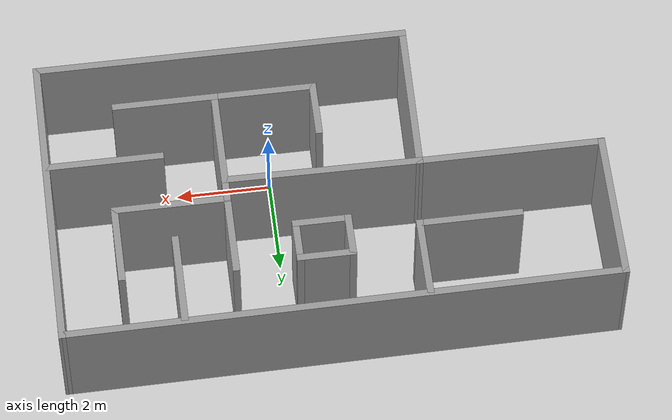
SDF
<sdf version="1.7">
 <world name="default">
  <light name="sun" type="directional">
   <pose>0 0 10 0 -0 0</pose>
   <diffuse>0.8 0.8 0.8 1</diffuse>
   <specular>0.2 0.2 0.2 1</specular>
   <attenuation>
    <range>1000</range>
    <constant>0.9</constant>
    <linear>0.01</linear>
    <quadratic>0.001</quadratic>
   </attenuation>
   <direction>-0.5 0.1 -0.9</direction>
   <spot><inner_angle>0</inner_angle><outer_angle>0</outer_angle><falloff>0</falloff></spot>
  </light>
  <model name="ground_plane">
   <static>1</static>
   <link name="link">
    <collision name="collision">
     <geometry><plane><normal>0 0 1</normal><size>100 100</size></plane></geometry>
     <surface>
      <contact><collide_bitmask>65535</collide_bitmask></contact>
      <friction><ode><mu>100</mu><mu2>50</mu2></ode></friction>
     </surface>
    </collision>
    <visual name="visual">
     <cast_shadows>0</cast_shadows>
     <geometry><plane><normal>0 0 1</normal><size>100 100</size></plane></geometry>
     <material>
      <script><uri>file://media/materials/scripts/gazebo.material</uri><name>Gazebo/Grey</name></script>
     </material>
    </visual>
   </link>
  </model>
  <gravity>0 0 -9.8</gravity>
  <magnetic_field>6e-06 2.3e-05 -4.2e-05</magnetic_field>
  <atmosphere type="adiabatic"/>
  <physics type="ode">
   <max_step_size>0.001</max_step_size>
   <real_time_factor>1</real_time_factor>
   <real_time_update_rate>1000</real_time_update_rate>
  </physics>
  <scene><ambient>0.4 0.4 0.4 1</ambient><background>0.7 0.7 0.7 1</background><shadows>1</shadows></scene>
  <spherical_coordinates>
   <surface_model>EARTH_WGS84</surface_model>
   <latitude_deg>0</latitude_deg>
   <longitude_deg>0</longitude_deg>
   <elevation>0</elevation>
   <heading_deg>0</heading_deg>
  </spherical_coordinates>
  <model name="map_1">
   <pose>-1.0912 1.19335 0 0 -0 0</pose>
   <link name="Wall_13">
    <collision name="Wall_13_Collision">
     <geometry><box><size>6.55397 0.15 2.5</size></box></geometry>
     <pose>0 0 1.25 0 -0 0</pose>
    </collision>
    <visual name="Wall_13_Visual">
     <pose>0 0 1.25 0 -0 0</pose>
     <geometry><box><size>6.55397 0.15 2.5</size></box></geometry>
     <material>
      <script><uri>file://media/materials/scripts/gazebo.material</uri><name>Gazebo/Grey</name></script>
      <ambient>1 1 1 1</ambient>
     </material>
     <meta><layer>0</layer></meta>
    </visual>
    <pose>5.82453 0.000467 0 0 -0 -1.57388</pose>
   </link>
   <link name="Wall_21">
    <collision name="Wall_21_Collision">
     <geometry><box><size>4.25 0.15 2.5</size></box></geometry>
     <pose>0 0 1.25 0 -0 0</pose>
    </collision>
    <visual name="Wall_21_Visual">
     <pose>0 0 1.25 0 -0 0</pose>
     <geometry><box><size>4.25 0.15 2.5</size></box></geometry>
     <material>
      <script><uri>file://media/materials/scripts/gazebo.material</uri><name>Gazebo/Grey</name></script>
      <ambient>1 1 1 1</ambient>
     </material>
     <meta><layer>0</layer></meta>
    </visual>
    <pose>0.08062 -0.025909 0 0 -0 -0.009646</pose>
   </link>
   <link name="Wall_29">
    <collision name="Wall_29_Collision">
     <geometry><box><size>2.21045 0.15 2.5</size></box></geometry>
     <pose>0 0 1.25 0 -0 0</pose>
    </collision>
    <visual name="Wall_29_Visual">
     <pose>0 0 1.25 0 -0 0</pose>
     <geometry><box><size>2.21045 0.15 2.5</size></box></geometry>
     <material>
      <script><uri>file://media/materials/scripts/gazebo.material</uri><name>Gazebo/Grey</name></script>
      <ambient>1 1 1 1</ambient>
     </material>
     <meta><layer>0</layer></meta>
    </visual>
    <pose>2.13062 -1.07591 0 0 -0 -1.5708</pose>
   </link>
   <link name="Wall_30">
    <collision name="Wall_30_Collision">
     <geometry><box><size>2.25 0.15 2.5</size></box></geometry>
     <pose>0 0 1.25 0 -0 0</pose>
    </collision>
    <visual name="Wall_30_Visual">
     <pose>0 0 1.25 0 -0 0</pose>
     <geometry><box><size>2.25 0.15 2.5</size></box></geometry>
     <material>
      <script><uri>file://media/materials/scripts/gazebo.material</uri><name>Gazebo/Grey</name></script>
      <ambient>1 1 1 1</ambient>
     </material>
     <meta><layer>0</layer></meta>
    </visual>
    <pose>1.08062 -2.10613 0 0 -0 3.14159</pose>
   </link>
   <link name="Wall_31">
    <collision name="Wall_31_Collision">
     <geometry><box><size>1.25 0.15 2.5</size></box></geometry>
     <pose>0 0 1.25 0 -0 0</pose>
    </collision>
    <visual name="Wall_31_Visual">
     <pose>0 0 1.25 0 -0 0</pose>
     <geometry><box><size>1.25 0.15 2.5</size></box></geometry>
     <material>
      <script><uri>file://media/materials/scripts/gazebo.material</uri><name>Gazebo/Grey</name></script>
      <ambient>1 1 1 1</ambient>
     </material>
     <meta><layer>0</layer></meta>
    </visual>
    <pose>0.03062 -1.55613 0 0 -0 1.5708</pose>
   </link>
   <link name="Wall_33">
    <collision name="Wall_33_Collision">
     <geometry><box><size>2.25 0.15 2.5</size></box></geometry>
     <pose>0 0 1.25 0 -0 0</pose>
    </collision>
    <visual name="Wall_33_Visual">
     <pose>0 0 1.25 0 -0 0</pose>
     <geometry><box><size>2.25 0.15 2.5</size></box></geometry>
     <material>
      <script><uri>file://media/materials/scripts/gazebo.material</uri><name>Gazebo/Grey</name></script>
      <ambient>1 1 1 1</ambient>
     </material>
     <meta><layer>0</layer></meta>
    </visual>
    <pose>3.18062 -2.10613 0 0 -0 0</pose>
   </link>
   <link name="Wall_35">
    <collision name="Wall_35_Collision">
     <geometry><box><size>2.5 0.15 2.5</size></box></geometry>
     <pose>0 0 1.25 0 -0 0</pose>
    </collision>
    <visual name="Wall_35_Visual">
     <pose>0 0 1.25 0 -0 0</pose>
     <geometry><box><size>2.5 0.15 2.5</size></box></geometry>
     <material>
      <script><uri>file://media/materials/scripts/gazebo.material</uri><name>Gazebo/Grey</name></script>
      <ambient>1 1 1 1</ambient>
     </material>
     <meta><layer>0</layer></meta>
    </visual>
    <pose>4.58756 -0.797125 0 0 -0 3.14159</pose>
   </link>
   <link name="Wall_37">
    <collision name="Wall_37_Collision">
     <geometry><box><size>2.25 0.15 2.5</size></box></geometry>
     <pose>0 0 1.25 0 -0 0</pose>
    </collision>
    <visual name="Wall_37_Visual">
     <pose>0 0 1.25 0 -0 0</pose>
     <geometry><box><size>2.25 0.15 2.5</size></box></geometry>
     <material>
      <script><uri>file://media/materials/scripts/gazebo.material</uri><name>Gazebo/Grey</name></script>
      <ambient>1 1 1 1</ambient>
     </material>
     <meta><layer>0</layer></meta>
    </visual>
    <pose>2.13062 1.02409 0 0 -0 1.5708</pose>
   </link>
   <link name="Wall_39">
    <collision name="Wall_39_Collision">
     <geometry><box><size>2.5 0.15 2.5</size></box></geometry>
     <pose>0 0 1.25 0 -0 0</pose>
    </collision>
    <visual name="Wall_39_Visual">
     <pose>0 0 1.25 0 -0 0</pose>
     <geometry><box><size>2.5 0.15 2.5</size></box></geometry>
     <material>
      <script><uri>file://media/materials/scripts/gazebo.material</uri><name>Gazebo/Grey</name></script>
      <ambient>1 1 1 1</ambient>
     </material>
     <meta><layer>0</layer></meta>
    </visual>
    <pose>3.31877 0.409136 0 0 -0 0</pose>
   </link>
   <link name="Wall_44">
    <collision name="Wall_44_Collision">
     <geometry><box><size>1.75 0.15 2.5</size></box></geometry>
     <pose>0 0 1.25 0 -0 0</pose>
    </collision>
    <visual name="Wall_44_Visual">
     <pose>0 0 1.25 0 -0 0</pose>
     <geometry><box><size>1.75 0.15 2.5</size></box></geometry>
     <material>
      <script><uri>file://media/materials/scripts/gazebo.material</uri><name>Gazebo/Grey</name></script>
      <ambient>1 1 1 1</ambient>
     </material>
     <meta><layer>0</layer></meta>
    </visual>
    <pose>4.49377 1.20914 0 0 -0 1.5708</pose>
   </link>
   <link name="Wall_46">
    <collision name="Wall_46_Collision">
     <geometry><box><size>2 0.15 2.5</size></box></geometry>
     <pose>0 0 1.25 0 -0 0</pose>
    </collision>
    <visual name="Wall_46_Visual">
     <pose>0 0 1.25 0 -0 0</pose>
     <geometry><box><size>2 0.15 2.5</size></box></geometry>
     <material>
      <script><uri>file://media/materials/scripts/gazebo.material</uri><name>Gazebo/Grey</name></script>
      <ambient>1 1 1 1</ambient>
     </material>
     <meta><layer>0</layer></meta>
    </visual>
    <pose>3.30575 2.17659 0 0 -0 -1.5708</pose>
   </link>
   <link name="Wall_49">
    <collision name="Wall_49_Collision">
     <geometry><box><size>3.34593 0.15 2.5</size></box></geometry>
     <pose>0 0 1.25 0 -0 0</pose>
    </collision>
    <visual name="Wall_49_Visual">
     <pose>0 0 1.25 0 -0 0</pose>
     <geometry><box><size>3.34593 0.15 2.5</size></box></geometry>
     <material>
      <script><uri>file://media/materials/scripts/gazebo.material</uri><name>Gazebo/Grey</name></script>
      <ambient>1 1 1 1</ambient>
     </material>
     <meta><layer>0</layer></meta>
    </visual>
    <pose>-2.00237 -1.60376 0 0 -0 -1.59144</pose>
   </link>
   <link name="Wall_51">
    <collision name="Wall_51_Collision">
     <geometry><box><size>4.01507 0.15 2.5</size></box></geometry>
     <pose>0 0 1.25 0 -0 0</pose>
    </collision>
    <visual name="Wall_51_Visual">
     <pose>0 0 1.25 0 -0 0</pose>
     <geometry><box><size>4.01507 0.15 2.5</size></box></geometry>
     <material>
      <script><uri>file://media/materials/scripts/gazebo.material</uri><name>Gazebo/Grey</name></script>
      <ambient>1 1 1 1</ambient>
     </material>
     <meta><layer>0</layer></meta>
    </visual>
    <pose>-3.9019 -0.006134 0 0 -0 3.14159</pose>
   </link>
   <link name="Wall_52">
    <collision name="Wall_52_Collision">
     <geometry><box><size>3.25 0.15 2.5</size></box></geometry>
     <pose>0 0 1.25 0 -0 0</pose>
    </collision>
    <visual name="Wall_52_Visual">
     <pose>0 0 1.25 0 -0 0</pose>
     <geometry><box><size>3.25 0.15 2.5</size></box></geometry>
     <material>
      <script><uri>file://media/materials/scripts/gazebo.material</uri><name>Gazebo/Grey</name></script>
      <ambient>1 1 1 1</ambient>
     </material>
     <meta><layer>0</layer></meta>
    </visual>
    <pose>-5.83442 1.5589 0 0 -0 1.5708</pose>
   </link>
   <link name="Wall_54">
    <collision name="Wall_54_Collision">
     <geometry><box><size>11.8192 0.15 2.5</size></box></geometry>
     <pose>0 0 1.25 0 -0 0</pose>
    </collision>
    <visual name="Wall_54_Visual">
     <pose>0 0 1.25 0 -0 0</pose>
     <geometry><box><size>11.8192 0.15 2.5</size></box></geometry>
     <material>
      <script><uri>file://media/materials/scripts/gazebo.material</uri><name>Gazebo/Grey</name></script>
      <ambient>1 1 1 1</ambient>
     </material>
     <meta><layer>0</layer></meta>
    </visual>
    <pose>-0 3.15561 0 0 -0 0.008005</pose>
   </link>
   <link name="Wall_9">
    <collision name="Wall_9_Collision">
     <geometry><box><size>8 0.15 2.5</size></box></geometry>
     <pose>0 0 1.25 0 -0 0</pose>
    </collision>
    <visual name="Wall_9_Visual">
     <pose>0 0 1.25 0 -0 0</pose>
     <geometry><box><size>8 0.15 2.5</size></box></geometry>
     <material>
      <script><uri>file://media/materials/scripts/gazebo.material</uri><name>Gazebo/Grey</name></script>
      <ambient>1 1 1 1</ambient>
     </material>
     <meta><layer>0</layer></meta>
    </visual>
    <pose>1.88964 -3.20138 0 0 -0 3.14159</pose>
   </link>
   <static>1</static>
  </model>
  <model name="map_2">
   <pose>-2.51861 2.17751 0 0 -0 0</pose>
   <link name="Wall_11">
    <collision name="Wall_11_Collision">
     <geometry><box><size>1.75 0.15 2.5</size></box></geometry>
     <pose>0 0 1.25 0 -0 0</pose>
    </collision>
    <visual name="Wall_11_Visual">
     <pose>0 0 1.25 0 -0 0</pose>
     <geometry><box><size>1.75 0.15 2.5</size></box></geometry>
     <material>
      <script><uri>file://media/materials/scripts/gazebo.material</uri><name>Gazebo/Grey</name></script>
      <ambient>1 1 1 1</ambient>
     </material>
     <meta><layer>0</layer></meta>
    </visual>
    <pose>-0.343614 1.30251 0 0 -0 1.5708</pose>
   </link>
   <link name="Wall_3">
    <collision name="Wall_3_Collision">
     <geometry><box><size>0.968758 0.15 2.5</size></box></geometry>
     <pose>0 0 1.25 0 -0 0</pose>
    </collision>
    <visual name="Wall_3_Visual">
     <pose>0 0 1.25 0 -0 0</pose>
     <geometry><box><size>0.968758 0.15 2.5</size></box></geometry>
     <material>
      <script><uri>file://media/materials/scripts/gazebo.material</uri><name>Gazebo/Grey</name></script>
      <ambient>1 1 1 1</ambient>
     </material>
     <meta><layer>0</layer></meta>
    </visual>
    <pose>2.21568 0.603184 0 0 -0 1.5708</pose>
   </link>
   <link name="Wall_5">
    <collision name="Wall_5_Collision">
     <geometry><box><size>1.25 0.15 2.5</size></box></geometry>
     <pose>0 0 1.25 0 -0 0</pose>
    </collision>
    <visual name="Wall_5_Visual">
     <pose>0 0 1.25 0 -0 0</pose>
     <geometry><box><size>1.25 0.15 2.5</size></box></geometry>
     <material>
      <script><uri>file://media/materials/scripts/gazebo.material</uri><name>Gazebo/Grey</name></script>
      <ambient>1 1 1 1</ambient>
     </material>
     <meta><layer>0</layer></meta>
    </visual>
    <pose>1.66568 1.01256 0 0 -0 3.14159</pose>
   </link>
   <link name="Wall_6">
    <collision name="Wall_6_Collision">
     <geometry><box><size>0.968758 0.15 2.5</size></box></geometry>
     <pose>0 0 1.25 0 -0 0</pose>
    </collision>
    <visual name="Wall_6_Visual">
     <pose>0 0 1.25 0 -0 0</pose>
     <geometry><box><size>0.968758 0.15 2.5</size></box></geometry>
     <material>
      <script><uri>file://media/materials/scripts/gazebo.material</uri><name>Gazebo/Grey</name></script>
      <ambient>1 1 1 1</ambient>
     </material>
     <meta><layer>0</layer></meta>
    </visual>
    <pose>1.11568 0.603184 0 0 -0 -1.5708</pose>
   </link>
   <link name="Wall_7">
    <collision name="Wall_7_Collision">
     <geometry><box><size>1.25 0.15 2.5</size></box></geometry>
     <pose>0 0 1.25 0 -0 0</pose>
    </collision>
    <visual name="Wall_7_Visual">
     <pose>0 0 1.25 0 -0 0</pose>
     <geometry><box><size>1.25 0.15 2.5</size></box></geometry>
     <material>
      <script><uri>file://media/materials/scripts/gazebo.material</uri><name>Gazebo/Grey</name></script>
      <ambient>1 1 1 1</ambient>
     </material>
     <meta><layer>0</layer></meta>
    </visual>
    <pose>1.66568 0.193805 0 0 -0 0</pose>
   </link>
   <link name="Wall_9">
    <collision name="Wall_9_Collision">
     <geometry><box><size>2.25 0.15 2.5</size></box></geometry>
     <pose>0 0 1.25 0 -0 0</pose>
    </collision>
    <visual name="Wall_9_Visual">
     <pose>0 0 1.25 0 -0 0</pose>
     <geometry><box><size>2.25 0.15 2.5</size></box></geometry>
     <material>
      <script><uri>file://media/materials/scripts/gazebo.material</uri><name>Gazebo/Grey</name></script>
      <ambient>1 1 1 1</ambient>
     </material>
     <meta><layer>0</layer></meta>
    </visual>
    <pose>-1.39361 0.502505 0 0 -0 0</pose>
   </link>
   <static>1</static>
  </model>
 </world>
</sdf>
